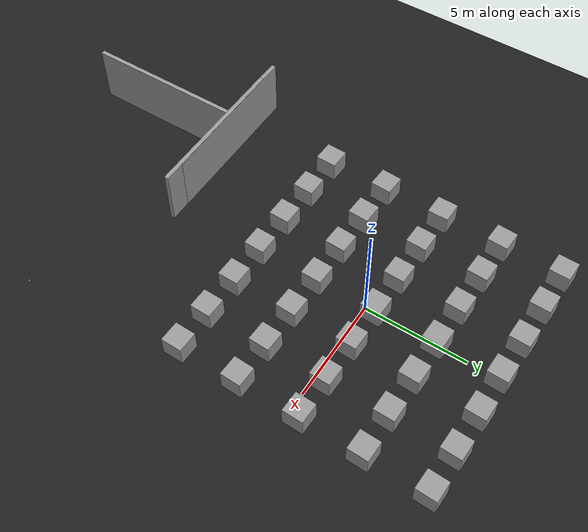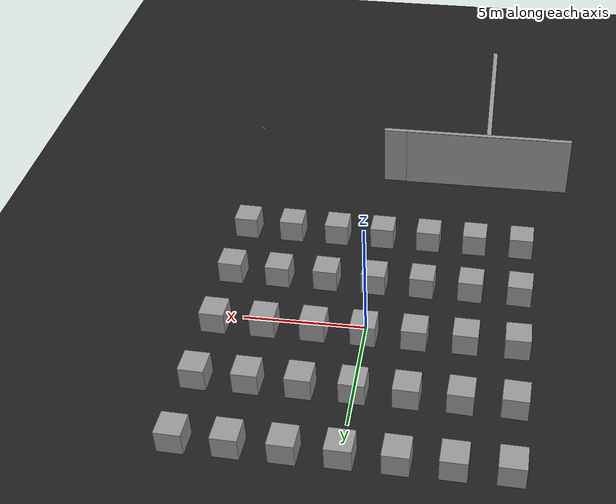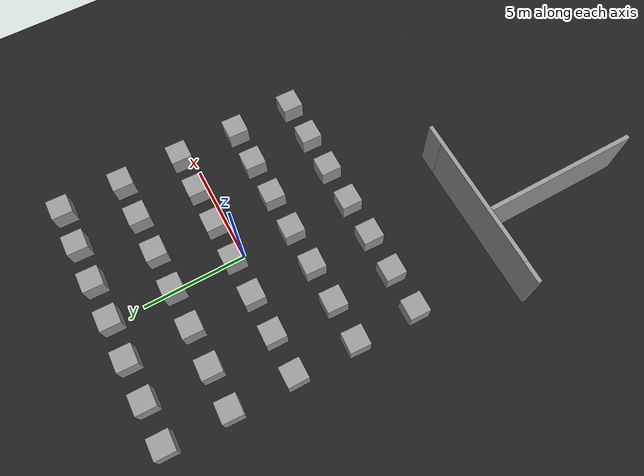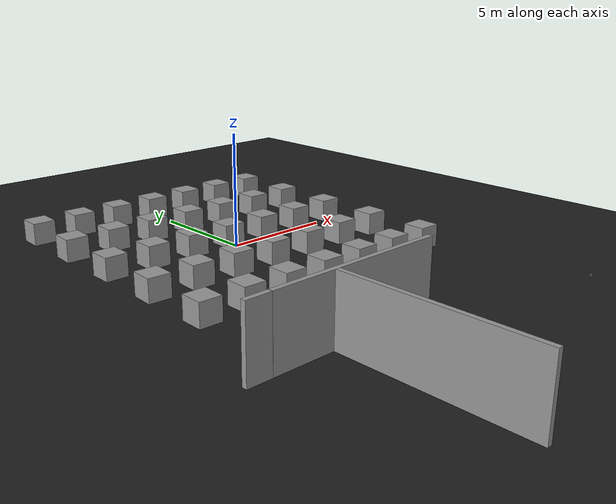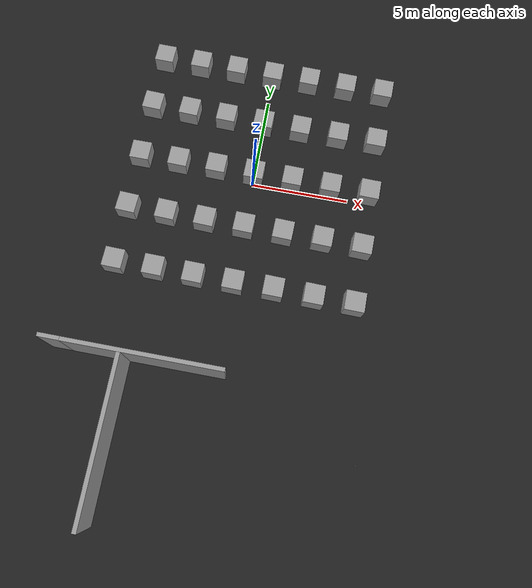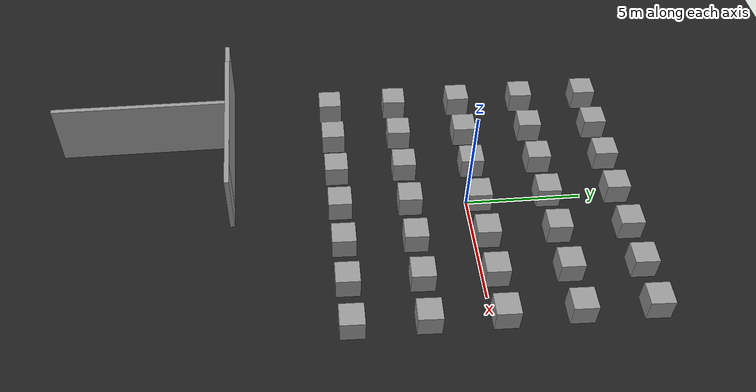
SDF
<sdf version="1.7">
 <world name="default">
  <light name="sun" type="directional">
   <cast_shadows>0</cast_shadows>
   <pose>0 0 20 0 -0 0</pose>
   <diffuse>0.8 0.8 0.8 1</diffuse>
   <specular>0.2 0.2 0.2 1</specular>
   <attenuation>
    <range>100</range>
    <constant>0.9</constant>
    <linear>0.01</linear>
    <quadratic>0.001</quadratic>
   </attenuation>
   <direction>-0.5 0.1 -0.9</direction>
   <spot><inner_angle>0</inner_angle><outer_angle>0</outer_angle><falloff>0</falloff></spot>
  </light>
  <model name="ground_plane">
   <static>1</static>
   <link name="link">
    <collision name="collision">
     <geometry><plane><normal>0 0 1</normal><size>100 100</size></plane></geometry>
     <surface><friction><ode><mu>100</mu><mu2>50</mu2></ode></friction></surface>
    </collision>
    <visual name="visual">
     <cast_shadows>0</cast_shadows>
     <geometry><plane><normal>0 0 1</normal><size>100 100</size></plane></geometry>
     <material>
      <script><uri>file://media/materials/scripts/gazebo.material</uri><name>Gazebo/BlackTransparent</name></script>
     </material>
    </visual>
   </link>
  </model>
  <gravity>0 0 -9.8</gravity>
  <magnetic_field>6e-06 2.3e-05 -4.2e-05</magnetic_field>
  <atmosphere type="adiabatic"/>
  <physics type="ode">
   <max_step_size>0.001</max_step_size>
   <real_time_factor>1</real_time_factor>
   <real_time_update_rate>1000</real_time_update_rate>
  </physics>
  <scene><ambient>0.4 0.4 0.4 1</ambient><background>0.7 0.7 0.7 1</background><shadows>0</shadows></scene>
  <spherical_coordinates>
   <surface_model>EARTH_WGS84</surface_model>
   <latitude_deg>0</latitude_deg>
   <longitude_deg>0</longitude_deg>
   <elevation>0</elevation>
   <heading_deg>0</heading_deg>
  </spherical_coordinates>
  <model name="table_8_9_10">
   <static>true</static>
   <link name="link">
    <pose>7.0 -12.9834 0.413567 3.14159 -1.57079 1.57079</pose>
    <inertial>
     <mass>0.390</mass>
     <inertia><ixx>0.00058</ixx><ixy>0</ixy><ixz>0</ixz><iyy>0.00058</iyy><iyz>0</iyz><izz>0.00019</izz></inertia>
    </inertial>
    <collision name="collision"><geometry><box><size>0.112 0.112 0.01</size></box></geometry></collision>
    <visual name="visual">
     <geometry><box><size>0.112 0.112 0.01</size></box></geometry>
     <material>
      <script>
       <uri>model://QR_Marker/materials/scripts</uri>
       <uri>model://QR_Marker/materials/textures</uri>
       <name>QR_Marker/qr_marker</name>
      </script>
     </material>
    </visual>
   </link>
  </model>
  <model name="unit_box">
   <pose>-6.01458 6.50784 0.5 0 -0 -0.028631</pose>
   <link name="link">
    <inertial>
     <mass>1</mass>
     <inertia>
      <ixx>0.166667</ixx>
      <ixy>0</ixy>
      <ixz>0</ixz>
      <iyy>0.166667</iyy>
      <iyz>0</iyz>
      <izz>0.166667</izz>
     </inertia>
    </inertial>
    <collision name="collision"><geometry><box><size>1 1 1</size></box></geometry></collision>
    <visual name="visual">
     <geometry><box><size>1 1 1</size></box></geometry>
     <material>
      <script><name>Gazebo/Grey</name><uri>file://media/materials/scripts/gazebo.material</uri></script>
     </material>
    </visual>
   </link>
  </model>
  <model name="unit_box_0">
   <pose>-6.04022 3.50705 0.5 0 0 -0.048184</pose>
   <link name="link">
    <inertial>
     <mass>1</mass>
     <inertia>
      <ixx>0.166667</ixx>
      <ixy>0</ixy>
      <ixz>0</ixz>
      <iyy>0.166667</iyy>
      <iyz>0</iyz>
      <izz>0.166667</izz>
     </inertia>
    </inertial>
    <collision name="collision"><geometry><box><size>1 1 1</size></box></geometry></collision>
    <visual name="visual">
     <geometry><box><size>1 1 1</size></box></geometry>
     <material>
      <script><name>Gazebo/Grey</name><uri>file://media/materials/scripts/gazebo.material</uri></script>
     </material>
    </visual>
   </link>
  </model>
  <model name="unit_box_1">
   <pose>-6.03194 0.49832 0.5 0 0 -0.007554</pose>
   <link name="link">
    <inertial>
     <mass>1</mass>
     <inertia>
      <ixx>0.166667</ixx>
      <ixy>0</ixy>
      <ixz>0</ixz>
      <iyy>0.166667</iyy>
      <iyz>0</iyz>
      <izz>0.166667</izz>
     </inertia>
    </inertial>
    <collision name="collision"><geometry><box><size>1 1 1</size></box></geometry></collision>
    <visual name="visual">
     <geometry><box><size>1 1 1</size></box></geometry>
     <material>
      <script><name>Gazebo/Grey</name><uri>file://media/materials/scripts/gazebo.material</uri></script>
     </material>
    </visual>
   </link>
  </model>
  <model name="unit_box_2">
   <pose>-6.04016 -2.49949 0.5 0 0 -0.047603</pose>
   <link name="link">
    <inertial>
     <mass>1</mass>
     <inertia>
      <ixx>0.166667</ixx>
      <ixy>0</ixy>
      <ixz>0</ixz>
      <iyy>0.166667</iyy>
      <iyz>0</iyz>
      <izz>0.166667</izz>
     </inertia>
    </inertial>
    <collision name="collision"><geometry><box><size>1 1 1</size></box></geometry></collision>
    <visual name="visual">
     <geometry><box><size>1 1 1</size></box></geometry>
     <material>
      <script><name>Gazebo/Grey</name><uri>file://media/materials/scripts/gazebo.material</uri></script>
     </material>
    </visual>
   </link>
  </model>
  <model name="unit_box_3">
   <pose>-6.01694 -5.49592 0.5 0 0 -0.024667</pose>
   <link name="link">
    <inertial>
     <mass>1</mass>
     <inertia>
      <ixx>0.166667</ixx>
      <ixy>0</ixy>
      <ixz>0</ixz>
      <iyy>0.166667</iyy>
      <iyz>0</iyz>
      <izz>0.166667</izz>
     </inertia>
    </inertial>
    <collision name="collision"><geometry><box><size>1 1 1</size></box></geometry></collision>
    <visual name="visual">
     <geometry><box><size>1 1 1</size></box></geometry>
     <material>
      <script><name>Gazebo/Grey</name><uri>file://media/materials/scripts/gazebo.material</uri></script>
     </material>
    </visual>
   </link>
  </model>
  <model name="unit_box_4">
   <pose>-4.00809 6.51203 0.5 -0 -0 -0.029283</pose>
   <link name="link">
    <inertial>
     <mass>1</mass>
     <inertia>
      <ixx>0.166667</ixx>
      <ixy>0</ixy>
      <ixz>0</ixz>
      <iyy>0.166667</iyy>
      <iyz>0</iyz>
      <izz>0.166667</izz>
     </inertia>
    </inertial>
    <collision name="collision"><geometry><box><size>1 1 1</size></box></geometry></collision>
    <visual name="visual">
     <geometry><box><size>1 1 1</size></box></geometry>
     <material>
      <script><name>Gazebo/Grey</name><uri>file://media/materials/scripts/gazebo.material</uri></script>
     </material>
    </visual>
   </link>
  </model>
  <model name="unit_box_5">
   <pose>-2.00694 6.5157 0.5 0 -0 -0.029544</pose>
   <link name="link">
    <inertial>
     <mass>1</mass>
     <inertia>
      <ixx>0.166667</ixx>
      <ixy>0</ixy>
      <ixz>0</ixz>
      <iyy>0.166667</iyy>
      <iyz>0</iyz>
      <izz>0.166667</izz>
     </inertia>
    </inertial>
    <collision name="collision"><geometry><box><size>1 1 1</size></box></geometry></collision>
    <visual name="visual">
     <geometry><box><size>1 1 1</size></box></geometry>
     <material>
      <script><name>Gazebo/Grey</name><uri>file://media/materials/scripts/gazebo.material</uri></script>
     </material>
    </visual>
   </link>
  </model>
  <model name="unit_box_6">
   <pose>-0.006427 6.49747 0.5 0 0 -0.029591</pose>
   <link name="link">
    <inertial>
     <mass>1</mass>
     <inertia>
      <ixx>0.166667</ixx>
      <ixy>0</ixy>
      <ixz>0</ixz>
      <iyy>0.166667</iyy>
      <iyz>0</iyz>
      <izz>0.166667</izz>
     </inertia>
    </inertial>
    <collision name="collision"><geometry><box><size>1 1 1</size></box></geometry></collision>
    <visual name="visual">
     <geometry><box><size>1 1 1</size></box></geometry>
     <material>
      <script><name>Gazebo/Grey</name><uri>file://media/materials/scripts/gazebo.material</uri></script>
     </material>
    </visual>
   </link>
  </model>
  <model name="unit_box_7">
   <pose>1.9957 6.51839 0.5 0 0 -0.030062</pose>
   <link name="link">
    <inertial>
     <mass>1</mass>
     <inertia>
      <ixx>0.166667</ixx>
      <ixy>0</ixy>
      <ixz>0</ixz>
      <iyy>0.166667</iyy>
      <iyz>0</iyz>
      <izz>0.166667</izz>
     </inertia>
    </inertial>
    <collision name="collision"><geometry><box><size>1 1 1</size></box></geometry></collision>
    <visual name="visual">
     <geometry><box><size>1 1 1</size></box></geometry>
     <material>
      <script><name>Gazebo/Grey</name><uri>file://media/materials/scripts/gazebo.material</uri></script>
     </material>
    </visual>
   </link>
  </model>
  <model name="unit_box_8">
   <pose>3.99684 6.50302 0.5 0 0 -0.030579</pose>
   <link name="link">
    <inertial>
     <mass>1</mass>
     <inertia>
      <ixx>0.166667</ixx>
      <ixy>0</ixy>
      <ixz>0</ixz>
      <iyy>0.166667</iyy>
      <iyz>0</iyz>
      <izz>0.166667</izz>
     </inertia>
    </inertial>
    <collision name="collision"><geometry><box><size>1 1 1</size></box></geometry></collision>
    <visual name="visual">
     <geometry><box><size>1 1 1</size></box></geometry>
     <material>
      <script><name>Gazebo/Grey</name><uri>file://media/materials/scripts/gazebo.material</uri></script>
     </material>
    </visual>
   </link>
  </model>
  <model name="unit_box_9">
   <pose>5.99873 6.50464 0.5 0 0 -0.030279</pose>
   <link name="link">
    <inertial>
     <mass>1</mass>
     <inertia>
      <ixx>0.166667</ixx>
      <ixy>0</ixy>
      <ixz>0</ixz>
      <iyy>0.166667</iyy>
      <iyz>0</iyz>
      <izz>0.166667</izz>
     </inertia>
    </inertial>
    <collision name="collision"><geometry><box><size>1 1 1</size></box></geometry></collision>
    <visual name="visual">
     <geometry><box><size>1 1 1</size></box></geometry>
     <material>
      <script><name>Gazebo/Grey</name><uri>file://media/materials/scripts/gazebo.material</uri></script>
     </material>
    </visual>
   </link>
  </model>
  <model name="unit_box_10">
   <pose>-4.03641 3.51654 0.5 0 -0 -0.047204</pose>
   <link name="link">
    <inertial>
     <mass>1</mass>
     <inertia>
      <ixx>0.166667</ixx>
      <ixy>0</ixy>
      <ixz>0</ixz>
      <iyy>0.166667</iyy>
      <iyz>0</iyz>
      <izz>0.166667</izz>
     </inertia>
    </inertial>
    <collision name="collision"><geometry><box><size>1 1 1</size></box></geometry></collision>
    <visual name="visual">
     <geometry><box><size>1 1 1</size></box></geometry>
     <material>
      <script><name>Gazebo/Grey</name><uri>file://media/materials/scripts/gazebo.material</uri></script>
     </material>
    </visual>
   </link>
  </model>
  <model name="unit_box_11">
   <pose>-2.02762 3.50564 0.5 0 0 -0.031899</pose>
   <link name="link">
    <inertial>
     <mass>1</mass>
     <inertia>
      <ixx>0.166667</ixx>
      <ixy>0</ixy>
      <ixz>0</ixz>
      <iyy>0.166667</iyy>
      <iyz>0</iyz>
      <izz>0.166667</izz>
     </inertia>
    </inertial>
    <collision name="collision"><geometry><box><size>1 1 1</size></box></geometry></collision>
    <visual name="visual">
     <geometry><box><size>1 1 1</size></box></geometry>
     <material>
      <script><name>Gazebo/Grey</name><uri>file://media/materials/scripts/gazebo.material</uri></script>
     </material>
    </visual>
   </link>
  </model>
  <model name="unit_box_12">
   <pose>-0.025936 3.50006 0.5 0 0 -0.032043</pose>
   <link name="link">
    <inertial>
     <mass>1</mass>
     <inertia>
      <ixx>0.166667</ixx>
      <ixy>0</ixy>
      <ixz>0</ixz>
      <iyy>0.166667</iyy>
      <iyz>0</iyz>
      <izz>0.166667</izz>
     </inertia>
    </inertial>
    <collision name="collision"><geometry><box><size>1 1 1</size></box></geometry></collision>
    <visual name="visual">
     <geometry><box><size>1 1 1</size></box></geometry>
     <material>
      <script><name>Gazebo/Grey</name><uri>file://media/materials/scripts/gazebo.material</uri></script>
     </material>
    </visual>
   </link>
  </model>
  <model name="unit_box_13">
   <pose>1.97868 3.49803 0.5 0 -0 -0.033056</pose>
   <link name="link">
    <inertial>
     <mass>1</mass>
     <inertia>
      <ixx>0.166667</ixx>
      <ixy>0</ixy>
      <ixz>0</ixz>
      <iyy>0.166667</iyy>
      <iyz>0</iyz>
      <izz>0.166667</izz>
     </inertia>
    </inertial>
    <collision name="collision"><geometry><box><size>1 1 1</size></box></geometry></collision>
    <visual name="visual">
     <geometry><box><size>1 1 1</size></box></geometry>
     <material>
      <script><name>Gazebo/Grey</name><uri>file://media/materials/scripts/gazebo.material</uri></script>
     </material>
    </visual>
   </link>
  </model>
  <model name="unit_box_14">
   <pose>3.98761 3.49791 0.5 0 0 -0.021261</pose>
   <link name="link">
    <inertial>
     <mass>1</mass>
     <inertia>
      <ixx>0.166667</ixx>
      <ixy>0</ixy>
      <ixz>0</ixz>
      <iyy>0.166667</iyy>
      <iyz>0</iyz>
      <izz>0.166667</izz>
     </inertia>
    </inertial>
    <collision name="collision"><geometry><box><size>1 1 1</size></box></geometry></collision>
    <visual name="visual">
     <geometry><box><size>1 1 1</size></box></geometry>
     <material>
      <script><name>Gazebo/Grey</name><uri>file://media/materials/scripts/gazebo.material</uri></script>
     </material>
    </visual>
   </link>
  </model>
  <model name="unit_box_15">
   <pose>5.99412 3.49961 0.5 0 0 -0.027445</pose>
   <link name="link">
    <inertial>
     <mass>1</mass>
     <inertia>
      <ixx>0.166667</ixx>
      <ixy>0</ixy>
      <ixz>0</ixz>
      <iyy>0.166667</iyy>
      <iyz>0</iyz>
      <izz>0.166667</izz>
     </inertia>
    </inertial>
    <collision name="collision"><geometry><box><size>1 1 1</size></box></geometry></collision>
    <visual name="visual">
     <geometry><box><size>1 1 1</size></box></geometry>
     <material>
      <script><name>Gazebo/Grey</name><uri>file://media/materials/scripts/gazebo.material</uri></script>
     </material>
    </visual>
   </link>
  </model>
  <model name="unit_box_16">
   <pose>-4.00948 0.496838 0.5 -0 -0 -0.024916</pose>
   <link name="link">
    <inertial>
     <mass>1</mass>
     <inertia>
      <ixx>0.166667</ixx>
      <ixy>0</ixy>
      <ixz>0</ixz>
      <iyy>0.166667</iyy>
      <iyz>0</iyz>
      <izz>0.166667</izz>
     </inertia>
    </inertial>
    <collision name="collision"><geometry><box><size>1 1 1</size></box></geometry></collision>
    <visual name="visual">
     <geometry><box><size>1 1 1</size></box></geometry>
     <material>
      <script><name>Gazebo/Grey</name><uri>file://media/materials/scripts/gazebo.material</uri></script>
     </material>
    </visual>
   </link>
  </model>
  <model name="unit_box_17">
   <pose>-2.00745 0.514385 0.5 0 0 -0.025078</pose>
   <link name="link">
    <inertial>
     <mass>1</mass>
     <inertia>
      <ixx>0.166667</ixx>
      <ixy>0</ixy>
      <ixz>0</ixz>
      <iyy>0.166667</iyy>
      <iyz>0</iyz>
      <izz>0.166667</izz>
     </inertia>
    </inertial>
    <collision name="collision"><geometry><box><size>1 1 1</size></box></geometry></collision>
    <visual name="visual">
     <geometry><box><size>1 1 1</size></box></geometry>
     <material>
      <script><name>Gazebo/Grey</name><uri>file://media/materials/scripts/gazebo.material</uri></script>
     </material>
    </visual>
   </link>
  </model>
  <model name="unit_box_18">
   <pose>-0.006792 0.511803 0.5 0 0 -0.025171</pose>
   <link name="link">
    <inertial>
     <mass>1</mass>
     <inertia>
      <ixx>0.166667</ixx>
      <ixy>0</ixy>
      <ixz>0</ixz>
      <iyy>0.166667</iyy>
      <iyz>0</iyz>
      <izz>0.166667</izz>
     </inertia>
    </inertial>
    <collision name="collision"><geometry><box><size>1 1 1</size></box></geometry></collision>
    <visual name="visual">
     <geometry><box><size>1 1 1</size></box></geometry>
     <material>
      <script><name>Gazebo/Grey</name><uri>file://media/materials/scripts/gazebo.material</uri></script>
     </material>
    </visual>
   </link>
  </model>
  <model name="unit_box_19">
   <pose>1.997 0.508713 0.5 -0 -0 -0.025928</pose>
   <link name="link">
    <inertial>
     <mass>1</mass>
     <inertia>
      <ixx>0.166667</ixx>
      <ixy>0</ixy>
      <ixz>0</ixz>
      <iyy>0.166667</iyy>
      <iyz>0</iyz>
      <izz>0.166667</izz>
     </inertia>
    </inertial>
    <collision name="collision"><geometry><box><size>1 1 1</size></box></geometry></collision>
    <visual name="visual">
     <geometry><box><size>1 1 1</size></box></geometry>
     <material>
      <script><name>Gazebo/Grey</name><uri>file://media/materials/scripts/gazebo.material</uri></script>
     </material>
    </visual>
   </link>
  </model>
  <model name="unit_box_20">
   <pose>3.99852 0.502371 0.5 0 -0 -0.025427</pose>
   <link name="link">
    <inertial>
     <mass>1</mass>
     <inertia>
      <ixx>0.166667</ixx>
      <ixy>0</ixy>
      <ixz>0</ixz>
      <iyy>0.166667</iyy>
      <iyz>0</iyz>
      <izz>0.166667</izz>
     </inertia>
    </inertial>
    <collision name="collision"><geometry><box><size>1 1 1</size></box></geometry></collision>
    <visual name="visual">
     <geometry><box><size>1 1 1</size></box></geometry>
     <material>
      <script><name>Gazebo/Grey</name><uri>file://media/materials/scripts/gazebo.material</uri></script>
     </material>
    </visual>
   </link>
  </model>
  <model name="unit_box_21">
   <pose>5.99968 0.500072 0.5 -0 -0 -0.025536</pose>
   <link name="link">
    <inertial>
     <mass>1</mass>
     <inertia>
      <ixx>0.166667</ixx>
      <ixy>0</ixy>
      <ixz>0</ixz>
      <iyy>0.166667</iyy>
      <iyz>0</iyz>
      <izz>0.166667</izz>
     </inertia>
    </inertial>
    <collision name="collision"><geometry><box><size>1 1 1</size></box></geometry></collision>
    <visual name="visual">
     <geometry><box><size>1 1 1</size></box></geometry>
     <material>
      <script><name>Gazebo/Grey</name><uri>file://media/materials/scripts/gazebo.material</uri></script>
     </material>
    </visual>
   </link>
  </model>
  <model name="unit_box_22">
   <pose>-4.02326 -2.50725 0.5 0 0 -0.042547</pose>
   <link name="link">
    <inertial>
     <mass>1</mass>
     <inertia>
      <ixx>0.166667</ixx>
      <ixy>0</ixy>
      <ixz>0</ixz>
      <iyy>0.166667</iyy>
      <iyz>0</iyz>
      <izz>0.166667</izz>
     </inertia>
    </inertial>
    <collision name="collision"><geometry><box><size>1 1 1</size></box></geometry></collision>
    <visual name="visual">
     <geometry><box><size>1 1 1</size></box></geometry>
     <material>
      <script><name>Gazebo/Grey</name><uri>file://media/materials/scripts/gazebo.material</uri></script>
     </material>
    </visual>
   </link>
  </model>
  <model name="unit_box_23">
   <pose>-2.0206 -2.50244 0.5 0 0 -0.042386</pose>
   <link name="link">
    <inertial>
     <mass>1</mass>
     <inertia>
      <ixx>0.166667</ixx>
      <ixy>0</ixy>
      <ixz>0</ixz>
      <iyy>0.166667</iyy>
      <iyz>0</iyz>
      <izz>0.166667</izz>
     </inertia>
    </inertial>
    <collision name="collision"><geometry><box><size>1 1 1</size></box></geometry></collision>
    <visual name="visual">
     <geometry><box><size>1 1 1</size></box></geometry>
     <material>
      <script><name>Gazebo/Grey</name><uri>file://media/materials/scripts/gazebo.material</uri></script>
     </material>
    </visual>
   </link>
  </model>
  <model name="unit_box_24">
   <pose>-0.01271 -2.487 0.5 0 0 -0.031074</pose>
   <link name="link">
    <inertial>
     <mass>1</mass>
     <inertia>
      <ixx>0.166667</ixx>
      <ixy>0</ixy>
      <ixz>0</ixz>
      <iyy>0.166667</iyy>
      <iyz>0</iyz>
      <izz>0.166667</izz>
     </inertia>
    </inertial>
    <collision name="collision"><geometry><box><size>1 1 1</size></box></geometry></collision>
    <visual name="visual">
     <geometry><box><size>1 1 1</size></box></geometry>
     <material>
      <script><name>Gazebo/Grey</name><uri>file://media/materials/scripts/gazebo.material</uri></script>
     </material>
    </visual>
   </link>
  </model>
  <model name="unit_box_25">
   <pose>1.99147 -2.49023 0.5 0 0 -0.034574</pose>
   <link name="link">
    <inertial>
     <mass>1</mass>
     <inertia>
      <ixx>0.166667</ixx>
      <ixy>0</ixy>
      <ixz>0</ixz>
      <iyy>0.166667</iyy>
      <iyz>0</iyz>
      <izz>0.166667</izz>
     </inertia>
    </inertial>
    <collision name="collision"><geometry><box><size>1 1 1</size></box></geometry></collision>
    <visual name="visual">
     <geometry><box><size>1 1 1</size></box></geometry>
     <material>
      <script><name>Gazebo/Grey</name><uri>file://media/materials/scripts/gazebo.material</uri></script>
     </material>
    </visual>
   </link>
  </model>
  <model name="unit_box_26">
   <pose>3.99338 -2.48179 0.5 0 0 -0.034704</pose>
   <link name="link">
    <inertial>
     <mass>1</mass>
     <inertia>
      <ixx>0.166667</ixx>
      <ixy>0</ixy>
      <ixz>0</ixz>
      <iyy>0.166667</iyy>
      <iyz>0</iyz>
      <izz>0.166667</izz>
     </inertia>
    </inertial>
    <collision name="collision"><geometry><box><size>1 1 1</size></box></geometry></collision>
    <visual name="visual">
     <geometry><box><size>1 1 1</size></box></geometry>
     <material>
      <script><name>Gazebo/Grey</name><uri>file://media/materials/scripts/gazebo.material</uri></script>
     </material>
    </visual>
   </link>
  </model>
  <model name="unit_box_27">
   <pose>5.99481 -2.50699 0.5 0 -0 -0.035375</pose>
   <link name="link">
    <inertial>
     <mass>1</mass>
     <inertia>
      <ixx>0.166667</ixx>
      <ixy>0</ixy>
      <ixz>0</ixz>
      <iyy>0.166667</iyy>
      <iyz>0</iyz>
      <izz>0.166667</izz>
     </inertia>
    </inertial>
    <collision name="collision"><geometry><box><size>1 1 1</size></box></geometry></collision>
    <visual name="visual">
     <geometry><box><size>1 1 1</size></box></geometry>
     <material>
      <script><name>Gazebo/Grey</name><uri>file://media/materials/scripts/gazebo.material</uri></script>
     </material>
    </visual>
   </link>
  </model>
  <model name="unit_box_28">
   <pose>-4.01045 -5.49395 0.5 0 -0 -0.019734</pose>
   <link name="link">
    <inertial>
     <mass>1</mass>
     <inertia>
      <ixx>0.166667</ixx>
      <ixy>0</ixy>
      <ixz>0</ixz>
      <iyy>0.166667</iyy>
      <iyz>0</iyz>
      <izz>0.166667</izz>
     </inertia>
    </inertial>
    <collision name="collision"><geometry><box><size>1 1 1</size></box></geometry></collision>
    <visual name="visual">
     <geometry><box><size>1 1 1</size></box></geometry>
     <material>
      <script><name>Gazebo/Grey</name><uri>file://media/materials/scripts/gazebo.material</uri></script>
     </material>
    </visual>
   </link>
  </model>
  <model name="unit_box_29">
   <pose>-2.00686 -5.49704 0.5 0 -0 -0.022503</pose>
   <link name="link">
    <inertial>
     <mass>1</mass>
     <inertia>
      <ixx>0.166667</ixx>
      <ixy>0</ixy>
      <ixz>0</ixz>
      <iyy>0.166667</iyy>
      <iyz>0</iyz>
      <izz>0.166667</izz>
     </inertia>
    </inertial>
    <collision name="collision"><geometry><box><size>1 1 1</size></box></geometry></collision>
    <visual name="visual">
     <geometry><box><size>1 1 1</size></box></geometry>
     <material>
      <script><name>Gazebo/Grey</name><uri>file://media/materials/scripts/gazebo.material</uri></script>
     </material>
    </visual>
   </link>
  </model>
  <model name="unit_box_30">
   <pose>-0.005241 -5.49193 0.5 0 -0 -0.020671</pose>
   <link name="link">
    <inertial>
     <mass>1</mass>
     <inertia>
      <ixx>0.166667</ixx>
      <ixy>0</ixy>
      <ixz>0</ixz>
      <iyy>0.166667</iyy>
      <iyz>0</iyz>
      <izz>0.166667</izz>
     </inertia>
    </inertial>
    <collision name="collision"><geometry><box><size>1 1 1</size></box></geometry></collision>
    <visual name="visual">
     <geometry><box><size>1 1 1</size></box></geometry>
     <material>
      <script><name>Gazebo/Grey</name><uri>file://media/materials/scripts/gazebo.material</uri></script>
     </material>
    </visual>
   </link>
  </model>
  <model name="unit_box_31">
   <pose>1.99556 -5.48651 0.5 0 -0 -0.021109</pose>
   <link name="link">
    <inertial>
     <mass>1</mass>
     <inertia>
      <ixx>0.166667</ixx>
      <ixy>0</ixy>
      <ixz>0</ixz>
      <iyy>0.166667</iyy>
      <iyz>0</iyz>
      <izz>0.166667</izz>
     </inertia>
    </inertial>
    <collision name="collision"><geometry><box><size>1 1 1</size></box></geometry></collision>
    <visual name="visual">
     <geometry><box><size>1 1 1</size></box></geometry>
     <material>
      <script><name>Gazebo/Grey</name><uri>file://media/materials/scripts/gazebo.material</uri></script>
     </material>
    </visual>
   </link>
  </model>
  <model name="unit_box_32">
   <pose>3.99636 -5.49751 0.5 0 -0 -0.020979</pose>
   <link name="link">
    <inertial>
     <mass>1</mass>
     <inertia>
      <ixx>0.166667</ixx>
      <ixy>0</ixy>
      <ixz>0</ixz>
      <iyy>0.166667</iyy>
      <iyz>0</iyz>
      <izz>0.166667</izz>
     </inertia>
    </inertial>
    <collision name="collision"><geometry><box><size>1 1 1</size></box></geometry></collision>
    <visual name="visual">
     <geometry><box><size>1 1 1</size></box></geometry>
     <material>
      <script><name>Gazebo/Grey</name><uri>file://media/materials/scripts/gazebo.material</uri></script>
     </material>
    </visual>
   </link>
  </model>
  <model name="unit_box_33">
   <pose>5.99752 -5.5015 0.5 0 0 -0.021423</pose>
   <link name="link">
    <inertial>
     <mass>1</mass>
     <inertia>
      <ixx>0.166667</ixx>
      <ixy>0</ixy>
      <ixz>0</ixz>
      <iyy>0.166667</iyy>
      <iyz>0</iyz>
      <izz>0.166667</izz>
     </inertia>
    </inertial>
    <collision name="collision"><geometry><box><size>1 1 1</size></box></geometry></collision>
    <visual name="visual">
     <geometry><box><size>1 1 1</size></box></geometry>
     <material>
      <script><name>Gazebo/Grey</name><uri>file://media/materials/scripts/gazebo.material</uri></script>
     </material>
    </visual>
   </link>
  </model>
  <model name="grey_wall">
   <static>1</static>
   <link name="link">
    <pose>0 0 1.4 0 -0 0</pose>
    <collision name="collision"><geometry><box><size>7.5 0.2 2.8</size></box></geometry></collision>
    <visual name="visual">
     <cast_shadows>0</cast_shadows>
     <geometry><box><size>7.5 0.2 2.8</size></box></geometry>
     <material>
      <script>
       <uri>model://grey_wall/materials/scripts</uri>
       <uri>model://grey_wall/materials/textures</uri>
       <name>vrc/grey_wall</name>
      </script>
     </material>
    </visual>
   </link>
   <pose>-4.27131 -13.9567 0 0 0 -1.57</pose>
  </model>
  <model name="grey_wall_clone">
   <static>1</static>
   <link name="link">
    <pose>0 0 1.4 0 -0 0</pose>
    <collision name="collision"><geometry><box><size>7.5 0.2 2.8</size></box></geometry></collision>
    <visual name="visual">
     <cast_shadows>0</cast_shadows>
     <geometry><box><size>7.5 0.2 2.8</size></box></geometry>
     <material>
      <script>
       <uri>model://grey_wall/materials/scripts</uri>
       <uri>model://grey_wall/materials/textures</uri>
       <name>vrc/grey_wall</name>
      </script>
     </material>
    </visual>
   </link>
   <pose>-3.23996 -10.1065 0 0 -0 0</pose>
  </model>
  <model name="grey_wall_clone_clone">
   <static>1</static>
   <link name="link">
    <pose>0 0 1.4 0 -0 0</pose>
    <collision name="collision"><geometry><box><size>7.5 0.2 2.8</size></box></geometry></collision>
    <visual name="visual">
     <cast_shadows>0</cast_shadows>
     <geometry><box><size>7.5 0.2 2.8</size></box></geometry>
     <material>
      <script>
       <uri>model://grey_wall/materials/scripts</uri>
       <uri>model://grey_wall/materials/textures</uri>
       <name>vrc/grey_wall</name>
      </script>
     </material>
    </visual>
   </link>
   <pose>-4.2715 -10.1 -0.01 0 -0 0</pose>
  </model>
 </world>
</sdf>
